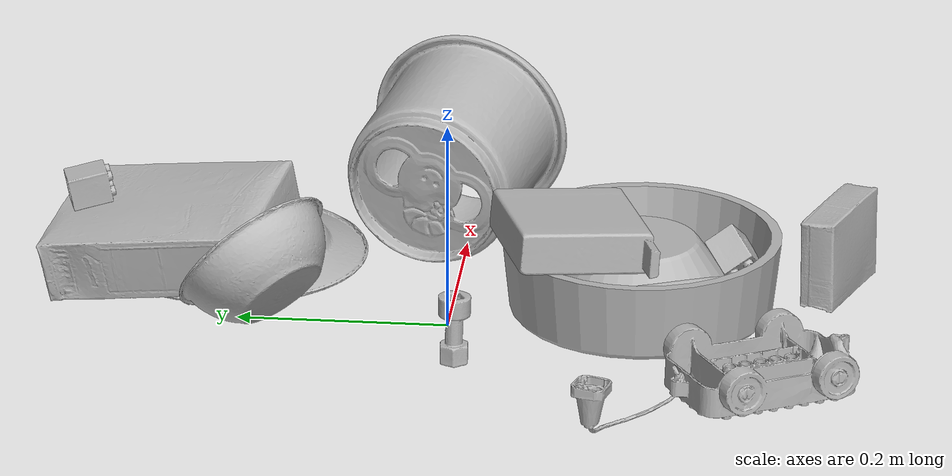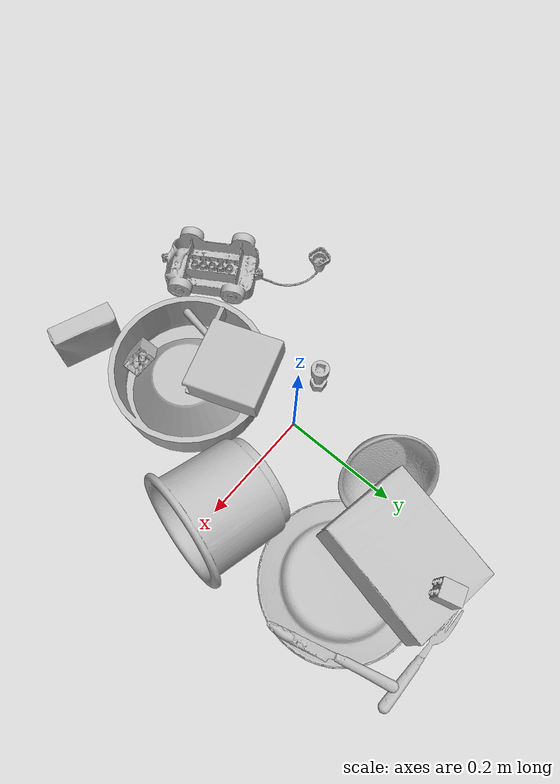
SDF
<sdf version="1.4">
  <world name="default">
    <light name="light1" type="point">
      <pose>0 0 1 0 0 0</pose>
      <diffuse>3 3 3 1</diffuse>
      <specular>3 3 3 1</specular>
    </light>
    <light name="light2" type="point">
      <pose>0 0.5 2 0 0 0</pose>
      <diffuse>1 1 1 1</diffuse>
      <specular>1 1 1 1</specular>
    </light>
    <light name="light3" type="point">
      <pose>0 0.5 2 0 0 0</pose>
      <diffuse>3 3 3 1</diffuse>
      <specular>3 3 3 1</specular>
    </light>
    <scene>
      <ambient>0.7 0.7 0.7</ambient>
    </scene>
    <model name="plate1">
      <link name="link_plate1">
        <collision name="default">
          <geometry>
            <mesh>
              <uri>model://plate/collision_meshes/collision.obj</uri>
              <scale>1.0 1.0 1.0</scale>
            </mesh>
          </geometry>
          <surface>
            <friction>
              <ode>
                <mu>0.5</mu>
                <mu2>0.5</mu2>
              </ode>
            </friction>
          <contact>
        <ode>
            <max_vel>0</max_vel>
            <min_depth>0.0001</min_depth>
            <kp>1e8</kp>
        </ode>
    </contact></surface>
        </collision>
        <visual name="default">
          <geometry>
            <mesh>
              <uri>model://plate/visual_meshes/visual.dae</uri>
              <scale>1.0 1.0 1.0</scale>
            </mesh>
          </geometry>
        </visual>
        <inertial>
          <mass>0.2518167495727539</mass>
          <pose>-0.000604460306931287 0.0002782583760563284 -0.001056198962032795 0.0022187362427659595 -0.003225514577586686 0.4526257716004426</pose>
          <inertia>
            <ixx>0.0011780038</ixx>
            <iyy>0.001166737</iyy>
            <izz>0.0023039998</izz>
            <ixy>0</ixy>
            <ixz>0</ixz>
            <iyz>0</iyz>
          </inertia>
        </inertial>
      </link>
      <pose>0.15453489124774933 0.22328680753707886 0.013502265326678753 -3.1405339048043706 -0.003388717443150845 -1.859308907910873</pose>
    </model>
    <model name="plate2">
      <link name="link_plate2">
        <collision name="default">
          <geometry>
            <mesh>
              <uri>model://pan_tefal/collision_meshes/collision.obj</uri>
              <scale>1.0 1.0 1.0</scale>
            </mesh>
          </geometry>
          <surface>
            <friction>
              <ode>
                <mu>0.5</mu>
                <mu2>0.5</mu2>
              </ode>
            </friction>
          <contact>
        <ode>
            <max_vel>0</max_vel>
            <min_depth>0.0001</min_depth>
            <kp>1e8</kp>
        </ode>
    </contact></surface>
        </collision>
        <visual name="default">
          <geometry>
            <mesh>
              <uri>model://pan_tefal/visual_meshes/visual.dae</uri>
              <scale>1.0 1.0 1.0</scale>
            </mesh>
          </geometry>
        </visual>
        <inertial>
          <mass>1.062379002571106</mass>
          <pose>-0.00018001841090153903 3.2791107514640316e-05 -0.008514937944710255 0.0008190335190592257 -0.00033013878845789875 -0.3318630487039029</pose>
          <inertia>
            <ixx>0.0073335525</ixx>
            <iyy>0.007380832</iyy>
            <izz>0.013499655</izz>
            <ixy>0</ixy>
            <ixz>0</ixz>
            <iyz>0</iyz>
          </inertia>
        </inertial>
      </link>
      <pose>0.057278212159872055 -0.17903631925582886 0.03804999217391014 3.9883859913416985e-07 8.51014137517402e-08 0.6501170038727153</pose>
    </model>
    <model name="bowl1">
      <link name="link_bowl1">
        <collision name="default">
          <geometry>
            <mesh>
              <uri>model://bowl/collision_meshes/collision.obj</uri>
              <scale>1.0 1.0 1.0</scale>
            </mesh>
          </geometry>
          <surface>
            <friction>
              <ode>
                <mu>0.5</mu>
                <mu2>0.5</mu2>
              </ode>
            </friction>
          <contact>
        <ode>
            <max_vel>0</max_vel>
            <min_depth>0.0001</min_depth>
            <kp>1e8</kp>
        </ode>
    </contact></surface>
        </collision>
        <visual name="default">
          <geometry>
            <mesh>
              <uri>model://bowl/visual_meshes/visual.dae</uri>
              <scale>1.0 1.0 1.0</scale>
            </mesh>
          </geometry>
        </visual>
        <inertial>
          <mass>0.06917417049407959</mass>
          <pose>0.00020445069822017103 -0.0010302119189873338 -0.0008042645640671253 -0.015764106225313407 0.014546789960746879 0.7140402093907182</pose>
          <inertia>
            <ixx>0.00015889853</ixx>
            <iyy>0.00015534814</iyy>
            <izz>0.000267322</izz>
            <ixy>0</ixy>
            <ixz>0</ixz>
            <iyz>0</iyz>
          </inertia>
        </inertial>
      </link>
      <pose>-0.01671776920557022 0.1702130138874054 0.05483619123697281 -0.8848757808345332 -0.19093401987214645 -0.8369483359453839</pose>
    </model>
    <model name="bowl2">
      <link name="link_bowl2">
        <collision name="default">
          <geometry>
            <mesh>
              <uri>model://bowl_a/collision_meshes/collision.obj</uri>
              <scale>1.0 1.0 1.0</scale>
            </mesh>
          </geometry>
          <surface>
            <friction>
              <ode>
                <mu>0.5</mu>
                <mu2>0.5</mu2>
              </ode>
            </friction>
          <contact>
        <ode>
            <max_vel>0</max_vel>
            <min_depth>0.0001</min_depth>
            <kp>1e8</kp>
        </ode>
    </contact></surface>
        </collision>
        <visual name="default">
          <geometry>
            <mesh>
              <uri>model://bowl_a/visual_meshes/visual.dae</uri>
              <scale>1.0 1.0 1.0</scale>
            </mesh>
          </geometry>
        </visual>
        <inertial>
          <mass>0.33581992983818054</mass>
          <pose>0.00027867587050423026 4.7312365495599806e-05 -0.0013765293406322598 -0.0009805275277335347 -0.0010938264345752996 -0.19124334191203107</pose>
          <inertia>
            <ixx>0.00095609494</ixx>
            <iyy>0.0009619646</iyy>
            <izz>0.0017004515</izz>
            <ixy>0</ixy>
            <ixz>0</ixz>
            <iyz>0</iyz>
          </inertia>
        </inertial>
      </link>
      <pose>0.06850720942020416 -0.1754034012556076 0.03777584806084633 -3.1410035820621816 6.682475268956987e-05 -2.3215013055083973</pose>
    </model>
    <model name="silverware1">
      <link name="link_silverware1">
        <collision name="default">
          <geometry>
            <mesh>
              <uri>model://spoon/collision_meshes/collision.obj</uri>
              <scale>1.0 1.0 1.0</scale>
            </mesh>
          </geometry>
          <surface>
            <friction>
              <ode>
                <mu>0.5</mu>
                <mu2>0.5</mu2>
              </ode>
            </friction>
          <contact>
        <ode>
            <max_vel>0</max_vel>
            <min_depth>0.0001</min_depth>
            <kp>1e8</kp>
        </ode>
    </contact></surface>
        </collision>
        <visual name="default">
          <geometry>
            <mesh>
              <uri>model://spoon/visual_meshes/visual.dae</uri>
              <scale>1.0 1.0 1.0</scale>
            </mesh>
          </geometry>
        </visual>
        <inertial>
          <mass>0.02635110728442669</mass>
          <pose>-0.005526317283511162 -0.0016034177970141172 -0.0007271651993505657 0.03521639754710896 -0.03906583271405073 0.0061506130160543454</pose>
          <inertia>
            <ixx>1.4656912e-06</ixx>
            <iyy>0.0001002651</iyy>
            <izz>0.00010098792</izz>
            <ixy>0</ixy>
            <ixz>0</ixz>
            <iyz>0</iyz>
          </inertia>
        </inertial>
      </link>
      <pose>-0.00687297573313117 -0.16641442477703094 0.04303191602230072 1.9957046351670258 0.190023854742683 1.4520138786779337</pose>
    </model>
    <model name="box1">
      <link name="link_box1">
        <collision name="default">
          <geometry>
            <mesh>
              <uri>model://cracker_box/collision_meshes/collision.obj</uri>
              <scale>1.0 1.0 1.0</scale>
            </mesh>
          </geometry>
          <surface>
            <friction>
              <ode>
                <mu>0.5</mu>
                <mu2>0.5</mu2>
              </ode>
            </friction>
          <contact>
        <ode>
            <max_vel>0</max_vel>
            <min_depth>0.0001</min_depth>
            <kp>1e8</kp>
        </ode>
    </contact></surface>
        </collision>
        <visual name="default">
          <geometry>
            <mesh>
              <uri>model://cracker_box/visual_meshes/visual.dae</uri>
              <scale>1.0 1.0 1.0</scale>
            </mesh>
          </geometry>
        </visual>
        <inertial>
          <mass>1.9942995309829712</mass>
          <pose>0.0009464178583584726 0.00025434247800149024 -0.0017029533628374338 -0.00031620747948387436 -0.011106490532043566 0.0025467943028284904</pose>
          <inertia>
            <ixx>0.005072607</ixx>
            <iyy>0.008375872</iyy>
            <izz>0.011953138</izz>
            <ixy>0</ixy>
            <ixz>0</ixz>
            <iyz>0</iyz>
          </inertia>
        </inertial>
      </link>
      <pose>0.07120750099420547 0.272020548582077 0.05514191463589668 -3.023184698196043 -0.15052635185622215 -1.7452107194155981</pose>
    </model>
    <model name="box2">
      <link name="link_box2">
        <collision name="default">
          <geometry>
            <mesh>
              <uri>model://pudding_box/collision_meshes/collision.obj</uri>
              <scale>1.0 1.0 1.0</scale>
            </mesh>
          </geometry>
          <surface>
            <friction>
              <ode>
                <mu>0.5</mu>
                <mu2>0.5</mu2>
              </ode>
            </friction>
          <contact>
        <ode>
            <max_vel>0</max_vel>
            <min_depth>0.0001</min_depth>
            <kp>1e8</kp>
        </ode>
    </contact></surface>
        </collision>
        <visual name="default">
          <geometry>
            <mesh>
              <uri>model://pudding_box/visual_meshes/visual.dae</uri>
              <scale>1.0 1.0 1.0</scale>
            </mesh>
          </geometry>
        </visual>
        <inertial>
          <mass>0.5201411247253418</mass>
          <pose>0.0004894821904599667 0.0008067885646596551 -0.0005188828217796981 0.00521310178321913 -0.006603799649863257 0.020079825157321304</pose>
          <inertia>
            <ixx>0.0005879929</ixx>
            <iyy>0.00039560578</iyy>
            <izz>0.00086832506</izz>
            <ixy>0</ixy>
            <ixz>0</ixz>
            <iyz>0</iyz>
          </inertia>
        </inertial>
      </link>
      <pose>0.11952893435955048 -0.3637048304080963 0.04457630589604378 -0.02029177149098349 -1.548068205017328 1.213652516312799</pose>
    </model>
    <model name="cup1">
      <link name="link_cup1">
        <collision name="default">
          <geometry>
            <mesh>
              <uri>model://i_cups/collision_meshes/collision.obj</uri>
              <scale>2.0 2.0 2.0</scale>
            </mesh>
          </geometry>
          <surface>
            <friction>
              <ode>
                <mu>0.5</mu>
                <mu2>0.5</mu2>
              </ode>
            </friction>
          <contact>
        <ode>
            <max_vel>0</max_vel>
            <min_depth>0.0001</min_depth>
            <kp>1e8</kp>
        </ode>
    </contact></surface>
        </collision>
        <visual name="default">
          <geometry>
            <mesh>
              <uri>model://i_cups/visual_meshes/visual.dae</uri>
              <scale>2.0 2.0 2.0</scale>
            </mesh>
          </geometry>
        </visual>
        <inertial>
          <mass>0.946932315826416</mass>
          <pose>0.00022480011102743447 0.0003359477559570223 -0.0017158038681373 -0.02898277199923076 -0.03987335280003036 -0.34591530516328983</pose>
          <inertia>
            <ixx>0.005244167</ixx>
            <iyy>0.0052903723</iyy>
            <izz>0.005861205</izz>
            <ixy>0</ixy>
            <ixz>0</ixz>
            <iyz>0</iyz>
          </inertia>
        </inertial>
      </link>
      <pose>0.1996171623468399 0.018878407776355743 0.08939944952726364 1.4463879318292918 -0.0848103948415334 1.3385880013737403</pose>
    </model>
    <model name="silverware2">
      <link name="link_silverware2">
        <collision name="default">
          <geometry>
            <mesh>
              <uri>model://fork/collision_meshes/collision.obj</uri>
              <scale>1.0 1.0 1.0</scale>
            </mesh>
          </geometry>
          <surface>
            <friction>
              <ode>
                <mu>0.5</mu>
                <mu2>0.5</mu2>
              </ode>
            </friction>
          <contact>
        <ode>
            <max_vel>0</max_vel>
            <min_depth>0.0001</min_depth>
            <kp>1e8</kp>
        </ode>
    </contact></surface>
        </collision>
        <visual name="default">
          <geometry>
            <mesh>
              <uri>model://fork/visual_meshes/visual.dae</uri>
              <scale>1.0 1.0 1.0</scale>
            </mesh>
          </geometry>
        </visual>
        <inertial>
          <mass>0.03207480534911156</mass>
          <pose>-0.02957005240023136 0.00046588238910771906 0.0003218861820641905 -0.013551414501779666 -0.010977842682601763 0.014453906756127453</pose>
          <inertia>
            <ixx>1.1244033e-06</ixx>
            <iyy>8.373807e-05</iyy>
            <izz>8.424099e-05</izz>
            <ixy>0</ixy>
            <ixz>0</ixz>
            <iyz>0</iyz>
          </inertia>
        </inertial>
      </link>
      <pose>0.16724151372909546 0.386246919631958 0.005702294874936342 -0.17998458145480034 0.025033565259637645 3.131277221074457</pose>
    </model>
    <model name="silverware3">
      <link name="link_silverware3">
        <collision name="default">
          <geometry>
            <mesh>
              <uri>model://knife/collision_meshes/collision.obj</uri>
              <scale>1.0 1.0 1.0</scale>
            </mesh>
          </geometry>
          <surface>
            <friction>
              <ode>
                <mu>0.5</mu>
                <mu2>0.5</mu2>
              </ode>
            </friction>
          <contact>
        <ode>
            <max_vel>0</max_vel>
            <min_depth>0.0001</min_depth>
            <kp>1e8</kp>
        </ode>
    </contact></surface>
        </collision>
        <visual name="default">
          <geometry>
            <mesh>
              <uri>model://knife/visual_meshes/visual.dae</uri>
              <scale>1.0 1.0 1.0</scale>
            </mesh>
          </geometry>
        </visual>
        <inertial>
          <mass>0.02260335348546505</mass>
          <pose>-0.023785259574651718 0.0015275129117071629 5.062025593360886e-05 0.073049853839256 0.017248417767033373 -0.0074098225522862896</pose>
          <inertia>
            <ixx>6.41575e-07</ixx>
            <iyy>8.6838445e-05</iyy>
            <izz>8.704508e-05</izz>
            <ixy>0</ixy>
            <ixz>0</ixz>
            <iyz>0</iyz>
          </inertia>
        </inertial>
      </link>
      <pose>0.25321847200393677 0.28175172209739685 0.01411124225705862 2.905040178101509 0.05267238704202891 -1.3120097332769376</pose>
    </model>
    <model name="toy1">
      <link name="link_toy1">
        <collision name="default">
          <geometry>
            <mesh>
              <uri>model://nine_hole_peg_test/collision_meshes/collision.obj</uri>
              <scale>1.0 1.0 1.0</scale>
            </mesh>
          </geometry>
          <surface>
            <friction>
              <ode>
                <mu>0.5</mu>
                <mu2>0.5</mu2>
              </ode>
            </friction>
          <contact>
        <ode>
            <max_vel>0</max_vel>
            <min_depth>0.0001</min_depth>
            <kp>1e8</kp>
        </ode>
    </contact></surface>
        </collision>
        <visual name="default">
          <geometry>
            <mesh>
              <uri>model://nine_hole_peg_test/visual_meshes/visual.dae</uri>
              <scale>1.0 1.0 1.0</scale>
            </mesh>
          </geometry>
        </visual>
        <inertial>
          <mass>0.3368244469165802</mass>
          <pose>-0.0046173869632184505 -0.009647615253925323 2.6460689696250483e-05 -0.001466679946039042 0.000719417968587533 -0.6342416610336568</pose>
          <inertia>
            <ixx>0.00052668044</ixx>
            <iyy>0.000491756</iyy>
            <izz>0.00092289934</izz>
            <ixy>0</ixy>
            <ixz>0</ixz>
            <iyz>0</iyz>
          </inertia>
        </inertial>
      </link>
      <pose>0.007543002255260944 -0.12324643135070801 0.09429024904966354 3.127041516232088 0.08073166886868029 -1.2572698376389178</pose>
    </model>
    <model name="toy2">
      <link name="link_toy2">
        <collision name="default">
          <geometry>
            <mesh>
              <uri>model://c_toy_airplane/collision_meshes/collision.obj</uri>
              <scale>1.0 1.0 1.0</scale>
            </mesh>
          </geometry>
          <surface>
            <friction>
              <ode>
                <mu>0.5</mu>
                <mu2>0.5</mu2>
              </ode>
            </friction>
          <contact>
        <ode>
            <max_vel>0</max_vel>
            <min_depth>0.0001</min_depth>
            <kp>1e8</kp>
        </ode>
    </contact></surface>
        </collision>
        <visual name="default">
          <geometry>
            <mesh>
              <uri>model://c_toy_airplane/visual_meshes/visual.dae</uri>
              <scale>1.0 1.0 1.0</scale>
            </mesh>
          </geometry>
        </visual>
        <inertial>
          <mass>0.025849465280771255</mass>
          <pose>-0.000230242803809233 -4.4294804979472246e-07 -0.006080531980842352 -0.006193997552816779 -0.016797268968147806 0.7655666586292194</pose>
          <inertia>
            <ixx>1.1869546e-05</ixx>
            <iyy>1.1836047e-05</iyy>
            <izz>2.7867347e-06</izz>
            <ixy>0</ixy>
            <ixz>0</ixz>
            <iyz>0</iyz>
          </inertia>
        </inertial>
      </link>
      <pose>-0.08405674248933792 -0.014326588250696659 0.03344075381755829 3.127914452169861 -0.009179317043613246 2.934964289978184</pose>
    </model>
    <model name="toy3">
      <link name="link_toy3">
        <collision name="default">
          <geometry>
            <mesh>
              <uri>model://g_lego_duplo/collision_meshes/collision.obj</uri>
              <scale>1.0 1.0 1.0</scale>
            </mesh>
          </geometry>
          <surface>
            <friction>
              <ode>
                <mu>0.5</mu>
                <mu2>0.5</mu2>
              </ode>
            </friction>
          <contact>
        <ode>
            <max_vel>0</max_vel>
            <min_depth>0.0001</min_depth>
            <kp>1e8</kp>
        </ode>
    </contact></surface>
        </collision>
        <visual name="default">
          <geometry>
            <mesh>
              <uri>model://g_lego_duplo/visual_meshes/visual.dae</uri>
              <scale>1.0 1.0 1.0</scale>
            </mesh>
          </geometry>
        </visual>
        <inertial>
          <mass>0.44857048988342285</mass>
          <pose>-0.05004768818616867 0.0017554624937474728 0.0038806761149317026 0.010962989380518968 0.03810827633819491 -0.09653029550410545</pose>
          <inertia>
            <ixx>0.0006499838</ixx>
            <iyy>0.00196511</iyy>
            <izz>0.0024584262</izz>
            <ixy>0</ixy>
            <ixz>0</ixz>
            <iyz>0</iyz>
          </inertia>
        </inertial>
      </link>
      <pose>-0.16459546983242035 -0.25133007764816284 0.027629002928733826 -3.1415913263197606 -0.030279658623950986 2.117182188399038</pose>
    </model>
    <model name="toy4">
      <link name="link_toy4">
        <collision name="default">
          <geometry>
            <mesh>
              <uri>model://b_lego_duplo/collision_meshes/collision.obj</uri>
              <scale>1.0 1.0 1.0</scale>
            </mesh>
          </geometry>
          <surface>
            <friction>
              <ode>
                <mu>0.5</mu>
                <mu2>0.5</mu2>
              </ode>
            </friction>
          <contact>
        <ode>
            <max_vel>0</max_vel>
            <min_depth>0.0001</min_depth>
            <kp>1e8</kp>
        </ode>
    </contact></surface>
        </collision>
        <visual name="default">
          <geometry>
            <mesh>
              <uri>model://b_lego_duplo/visual_meshes/visual.dae</uri>
              <scale>1.0 1.0 1.0</scale>
            </mesh>
          </geometry>
        </visual>
        <inertial>
          <mass>0.028142115101218224</mass>
          <pose>-0.00011053047637687996 -9.15253895072965e-06 0.0019294291269034147 -0.03749502345465157 -0.02635389323626884 0.4519044936865358</pose>
          <inertia>
            <ixx>5.759495e-06</ixx>
            <iyy>5.798213e-06</iyy>
            <izz>5.1315224e-06</izz>
            <ixy>0</ixy>
            <ixz>0</ixz>
            <iyz>0</iyz>
          </inertia>
        </inertial>
      </link>
      <pose>0.08394467085599899 0.35085752606391907 0.09524443745613098 0.2107011573766148 1.3878297933896284 -1.0664149387056368</pose>
    </model>
    <model name="toy5">
      <link name="link_toy5">
        <collision name="default">
          <geometry>
            <mesh>
              <uri>model://d_lego_duplo/collision_meshes/collision.obj</uri>
              <scale>1.0 1.0 1.0</scale>
            </mesh>
          </geometry>
          <surface>
            <friction>
              <ode>
                <mu>0.5</mu>
                <mu2>0.5</mu2>
              </ode>
            </friction>
          <contact>
        <ode>
            <max_vel>0</max_vel>
            <min_depth>0.0001</min_depth>
            <kp>1e8</kp>
        </ode>
    </contact></surface>
        </collision>
        <visual name="default">
          <geometry>
            <mesh>
              <uri>model://d_lego_duplo/visual_meshes/visual.dae</uri>
              <scale>1.0 1.0 1.0</scale>
            </mesh>
          </geometry>
        </visual>
        <inertial>
          <mass>0.03456217050552368</mass>
          <pose>0.00283056334592402 0.00016366186900995672 0.0008589798817411065 0.08010865489808279 -0.3835519084219494 0.001029683970252444</pose>
          <inertia>
            <ixx>6.6907255e-06</ixx>
            <iyy>9.495956e-06</iyy>
            <izz>9.1575175e-06</izz>
            <ixy>0</ixy>
            <ixz>0</ixz>
            <iyz>0</iyz>
          </inertia>
        </inertial>
      </link>
      <pose>0.0878935381770134 -0.2665490210056305 0.04456351324915886 -2.3785207114806464 -0.5946911784391543 2.8457674668442143</pose>
    </model>
  <physics type="ode">
      <max_contacts>50</max_contacts>
      <ode>
        <solver>
          <type>quick</type>
          <iters>75</iters>
        </solver>
        <constraints>
          <contact_max_correcting_vel>0</contact_max_correcting_vel>
          <contact_surface_layer>0</contact_surface_layer>
        </constraints>
      </ode>
    </physics></world>
</sdf>
